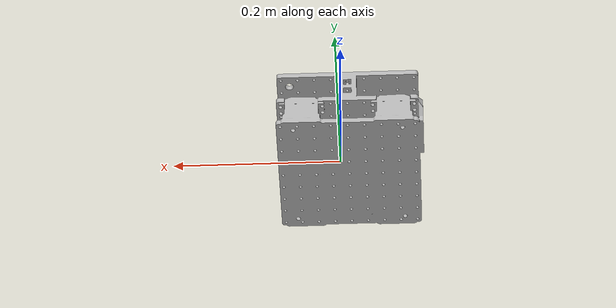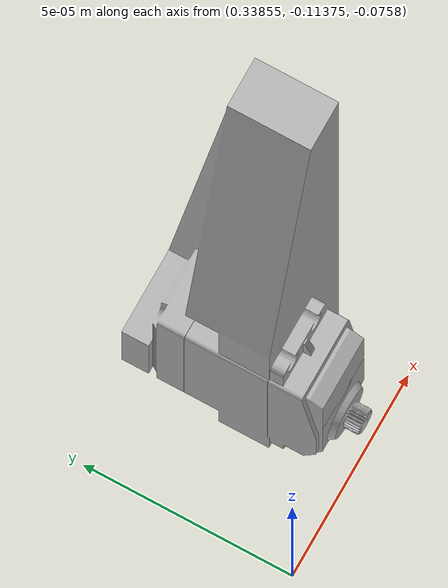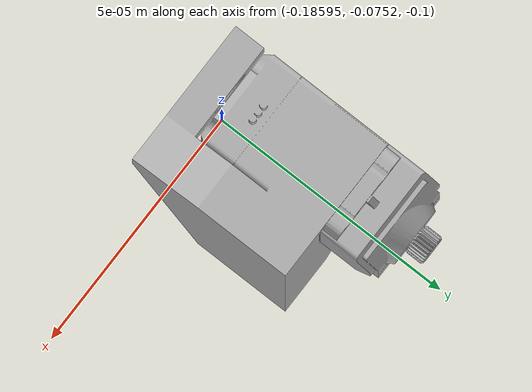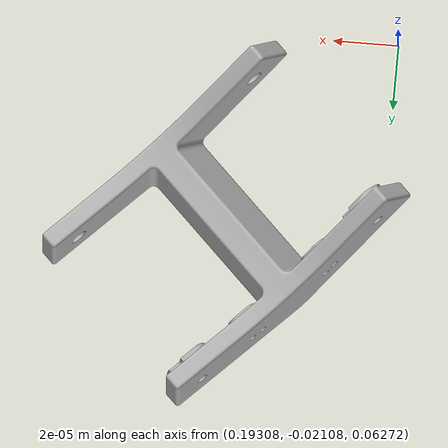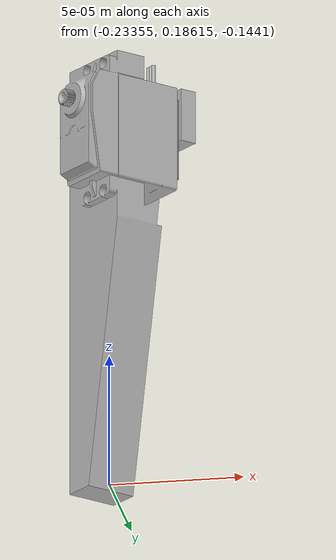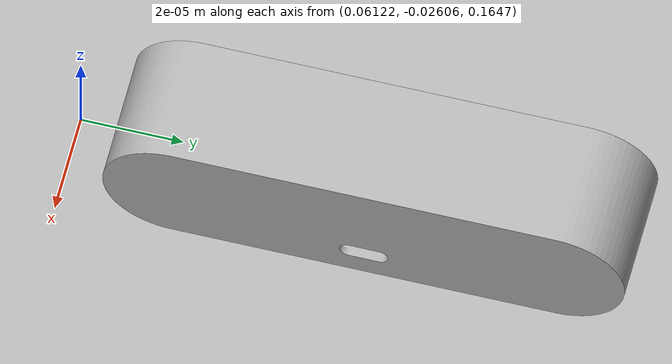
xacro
<?xml version="1.0" ?>
<robot name="spyderr" xmlns:xacro="http://www.ros.org/wiki/xacro">

<!-- ROS 2–safe package share root -->
<xacro:property name="pkg_share" value="$(find spyderr_description)"/>
<xacro:property name="mesh_dir"  value="${pkg_share}/meshes"/>

<xacro:include filename="${pkg_share}/urdf/materials.xacro" />
<xacro:include filename="${pkg_share}/urdf/spyderr.ros2control" />
<xacro:include filename="${pkg_share}/urdf/spyderr.gazebo" />

<link name="base_link">
  <inertial>
    <origin xyz="-0.011634383299055345 -0.020012327327441907 0.04021488449284461" rpy="0 0 0"/>
    <mass value="5.582430267110478"/>
    <inertia ixx="0.022303" iyy="0.019413" izz="0.030673" ixy="-6e-06" iyz="4e-06" ixz="0.000124"/>
  </inertial>
  <visual>
    <origin xyz="0 0 0" rpy="0 0 0"/>
    <geometry>
      <mesh filename="file://${mesh_dir}/base_link.stl" scale="0.001 0.001 0.001"/>
    </geometry>
    <material name="silver"/>
  </visual>
  <collision>
    <origin xyz="0 0 0" rpy="0 0 0"/>
    <geometry>
      <mesh filename="file://${mesh_dir}/base_link.stl" scale="0.001 0.001 0.001"/>
    </geometry>
  </collision>
</link>

<link name="coxa_FR_1">
  <inertial>
    <origin xyz="-0.028011122462089824 0.029189467664063093 -0.025661452378790764" rpy="0 0 0"/>
    <mass value="0.5326447248518721"/>
    <inertia ixx="0.00026" iyy="0.000276" izz="0.000188" ixy="2.9e-05" iyz="-1e-05" ixz="-2e-06"/>
  </inertial>
  <visual>
    <origin xyz="0 0 0" rpy="0 0 0"/>
    <geometry>
      <mesh filename="file://${mesh_dir}/link_local/coxa_FR_1__visual0.stl" scale="0.001 0.001 0.001"/>
    </geometry>
    <material name="silver"/>
  </visual>
  <collision>
    <origin xyz="0.0749 -0.0542 -0.0528" rpy="0 0 0"/>
    <geometry>
      <mesh filename="file://${mesh_dir}/coxa_FR_1.stl" scale="0.001 0.001 0.001"/>
    </geometry>
  </collision>
</link>

<link name="femur_FR_1">
  <inertial>
    <origin xyz="-0.022308199277599444 0.09228828281012573 -0.028037197394316607" rpy="0 0 0"/>
    <mass value="0.3037238401732045"/>
    <inertia ixx="0.000169" iyy="0.000169" izz="0.000293" ixy="-3.2e-05" iyz="1.9e-05" ixz="-1.9e-05"/>
  </inertial>
  <visual>
    <origin xyz="0 0 0" rpy="0 0 0"/>
    <geometry>
      <mesh filename="file://${mesh_dir}/link_local/femur_FR_1__visual0.stl" scale="0.001 0.001 0.001"/>
    </geometry>
    <material name="silver"/>
  </visual>
  <collision>
    <origin xyz="0.113987 -0.023232 -0.0627" rpy="0 0 0"/>
    <geometry>
      <mesh filename="file://${mesh_dir}/femur_FR_1.stl" scale="0.001 0.001 0.001"/>
    </geometry>
  </collision>
</link>

<link name="tibia_FR_1">
  <inertial>
    <origin xyz="0.06983981832712044 -0.04072388686916903 0.11930466179720378" rpy="0 0 0"/>
    <mass value="0.856718844269578"/>
    <inertia ixx="0.001697" iyy="0.001665" izz="0.000146" ixy="-1.3e-05" iyz="6.5e-05" ixz="-7.6e-05"/>
  </inertial>
  <visual>
    <origin xyz="0 0 0" rpy="0 0 0"/>
    <geometry>
      <mesh filename="file://${mesh_dir}/link_local/tibia_FR_1__visual0.stl" scale="0.001 0.001 0.001"/>
    </geometry>
    <material name="silver"/>
  </visual>
  <collision>
    <origin xyz="0.23362 -0.186207 0.144115" rpy="0 0 0"/>
    <geometry>
      <mesh filename="file://${mesh_dir}/tibia_FR_1.stl" scale="0.001 0.001 0.001"/>
    </geometry>
  </collision>
</link>

<link name="coxa_BR_1">
  <inertial>
    <origin xyz="0.02918900281187222 0.028011587314280717 -0.025661452378790736" rpy="0 0 0"/>
    <mass value="0.5326447248518721"/>
    <inertia ixx="0.000276" iyy="0.00026" izz="0.000188" ixy="-2.9e-05" iyz="2e-06" ixz="-1e-05"/>
  </inertial>
  <visual>
    <origin xyz="0 0 0" rpy="0 0 0"/>
    <geometry>
      <mesh filename="file://${mesh_dir}/link_local/coxa_BR_1__visual0.stl" scale="0.001 0.001 0.001"/>
    </geometry>
    <material name="silver"/>
  </visual>
  <collision>
    <origin xyz="-0.0549 -0.0542 -0.0528" rpy="0 0 0"/>
    <geometry>
      <mesh filename="file://${mesh_dir}/coxa_BR_1.stl" scale="0.001 0.001 0.001"/>
    </geometry>
  </collision>
</link>

<link name="femur_BR_1">
  <inertial>
    <origin xyz="-0.0771502480592433 0.13679673014696808 -0.028037197394316524" rpy="0 0 0"/>
    <mass value="0.3037238401732045"/>
    <inertia ixx="0.000169" iyy="0.000169" izz="0.000293" ixy="3.2e-05" iyz="1.9e-05" ixz="1.9e-05"/>
  </inertial>
  <visual>
    <origin xyz="0 0 0" rpy="0 0 0"/>
    <geometry>
      <mesh filename="file://${mesh_dir}/link_local/femur_BR_1__visual0.stl" scale="0.001 0.001 0.001"/>
    </geometry>
    <material name="silver"/>
  </visual>
  <collision>
    <origin xyz="-0.193264 0.021095 -0.0627" rpy="0 0 0"/>
    <geometry>
      <mesh filename="file://${mesh_dir}/femur_BR_1.stl" scale="0.001 0.001 0.001"/>
    </geometry>
  </collision>
</link>

<link name="tibia_BR_1">
  <inertial>
    <origin xyz="-0.07159486434794465 -0.10141884084834538 -0.18156633820279572" rpy="0 0 0"/>
    <mass value="0.856718844269578"/>
    <inertia ixx="0.001665" iyy="0.001697" izz="0.000146" ixy="1.3e-05" iyz="7.6e-05" ixz="6.5e-05"/>
  </inertial>
  <visual>
    <origin xyz="0 0 0" rpy="0 0 0"/>
    <geometry>
      <mesh filename="file://${mesh_dir}/link_local/tibia_BR_1__visual0.stl" scale="0.001 0.001 0.001"/>
    </geometry>
    <material name="silver"/>
  </visual>
  <collision>
    <origin xyz="-0.218025 -0.244252 -0.156756" rpy="0 0 0"/>
    <geometry>
      <mesh filename="file://${mesh_dir}/tibia_BR_1.stl" scale="0.001 0.001 0.001"/>
    </geometry>
  </collision>
</link>

<link name="coxa_FL_1">
  <inertial>
    <origin xyz="-0.02918900281187209 -0.028011587314280648 -0.02566145237879071" rpy="0 0 0"/>
    <mass value="0.5326447248518721"/>
    <inertia ixx="0.000276" iyy="0.00026" izz="0.000188" ixy="-2.9e-05" iyz="-2e-06" ixz="1e-05"/>
  </inertial>
  <visual>
    <origin xyz="0 0 0" rpy="0 0 0"/>
    <geometry>
      <mesh filename="file://${mesh_dir}/link_local/coxa_FL_1__visual0.stl" scale="0.001 0.001 0.001"/>
    </geometry>
    <material name="silver"/>
  </visual>
  <collision>
    <origin xyz="0.0749 0.0942 -0.0528" rpy="0 0 0"/>
    <geometry>
      <mesh filename="file://${mesh_dir}/coxa_FL_1.stl" scale="0.001 0.001 0.001"/>
    </geometry>
  </collision>
</link>

<link name="femur_FL_1">
  <inertial>
    <origin xyz="-0.22036675194075658 -0.20554973014696815 -0.02803719739431651" rpy="0 0 0"/>
    <mass value="0.3037238401732045"/>
    <inertia ixx="0.000169" iyy="0.000169" izz="0.000293" ixy="3.2e-05" iyz="-1.9e-05" ixz="-1.9e-05"/>
  </inertial>
  <visual>
    <origin xyz="0 0 0" rpy="0 0 0"/>
    <geometry>
      <mesh filename="file://${mesh_dir}/link_local/femur_FL_1__visual0.stl" scale="0.001 0.001 0.001"/>
    </geometry>
    <material name="silver"/>
  </visual>
  <collision>
    <origin xyz="-0.084253 -0.049848 -0.0627" rpy="0 0 0"/>
    <geometry>
      <mesh filename="file://${mesh_dir}/femur_FL_1.stl" scale="0.001 0.001 0.001"/>
    </geometry>
  </collision>
</link>

<link name="tibia_FL_1">
  <inertial>
    <origin xyz="-0.18368113565205535 -0.15385715915165465 0.07514566179720432" rpy="0 0 0"/>
    <mass value="0.856718844269578"/>
    <inertia ixx="0.001665" iyy="0.001697" izz="0.000146" ixy="1.3e-05" iyz="-7.6e-05" ixz="-6.5e-05"/>
  </inertial>
  <visual>
    <origin xyz="0 0 0" rpy="0 0 0"/>
    <geometry>
      <mesh filename="file://${mesh_dir}/link_local/tibia_FL_1__visual0.stl" scale="0.001 0.001 0.001"/>
    </geometry>
    <material name="silver"/>
  </visual>
  <collision>
    <origin xyz="-0.017251 0.028976 0.099956" rpy="0 0 0"/>
    <geometry>
      <mesh filename="file://${mesh_dir}/tibia_FL_1.stl" scale="0.001 0.001 0.001"/>
    </geometry>
  </collision>
</link>

<link name="coxa_BL_1">
  <inertial>
    <origin xyz="0.02801112246208972 -0.02918946766406294 -0.025661452378790733" rpy="0 0 0"/>
    <mass value="0.5326447248518721"/>
    <inertia ixx="0.00026" iyy="0.000276" izz="0.000188" ixy="2.9e-05" iyz="1e-05" ixz="2e-06"/>
  </inertial>
  <visual>
    <origin xyz="0 0 0" rpy="0 0 0"/>
    <geometry>
      <mesh filename="file://${mesh_dir}/link_local/coxa_BL_1__visual0.stl" scale="0.001 0.001 0.001"/>
    </geometry>
    <material name="silver"/>
  </visual>
  <collision>
    <origin xyz="-0.0549 0.0942 -0.0528" rpy="0 0 0"/>
    <geometry>
      <mesh filename="file://${mesh_dir}/coxa_BL_1.stl" scale="0.001 0.001 0.001"/>
    </geometry>
  </collision>
</link>

<link name="femur_BL_1">
  <inertial>
    <origin xyz="0.32028581868537026 -0.05003066340235417 -0.02803719739431655" rpy="0 0 0"/>
    <mass value="0.3037238401732045"/>
    <inertia ixx="0.000169" iyy="0.000169" izz="0.000293" ixy="-3.2e-05" iyz="-1.9e-05" ixz="1.9e-05"/>
  </inertial>
  <visual>
    <origin xyz="0 0 0" rpy="0 0 0"/>
    <geometry>
      <mesh filename="file://${mesh_dir}/link_local/femur_BL_1__visual0.stl" scale="0.001 0.001 0.001"/>
    </geometry>
    <material name="silver"/>
  </visual>
  <collision>
    <origin xyz="0.203531 0.10503 -0.0627" rpy="0 0 0"/>
    <geometry>
      <mesh filename="file://${mesh_dir}/femur_BL_1.stl" scale="0.001 0.001 0.001"/>
    </geometry>
  </collision>
</link>

<link name="tibia_BL_1">
  <inertial>
    <origin xyz="0.12266080108065015 -0.1517774937230599 -0.22618533820279574" rpy="0 0 0"/>
    <mass value="0.856718844269578"/>
    <inertia ixx="0.001697" iyy="0.001665" izz="0.000146" ixy="-1.3e-05" iyz="-6.5e-05" ixz="7.6e-05"/>
  </inertial>
  <visual>
    <origin xyz="0 0 0" rpy="0 0 0"/>
    <geometry>
      <mesh filename="file://${mesh_dir}/link_local/tibia_BL_1__visual0.stl" scale="0.001 0.001 0.001"/>
    </geometry>
    <material name="silver"/>
  </visual>
  <collision>
    <origin xyz="-0.021579 0.033246 -0.201375" rpy="0 0 0"/>
    <geometry>
      <mesh filename="file://${mesh_dir}/tibia_BL_1.stl" scale="0.001 0.001 0.001"/>
    </geometry>
  </collision>
</link>

<link name="camera_stand_1">
  <inertial>
    <origin xyz="0.002322519957098118 -0.006000468557076734 0.0390749353327329" rpy="0 0 0"/>
    <mass value="0.28621405783156734"/>
    <inertia ixx="0.000356" iyy="0.000274" izz="0.000106" ixy="-0.0" iyz="-0.0" ixz="-0.0"/>
  </inertial>
  <visual>
    <origin xyz="0 0 0" rpy="0 0 0"/>
    <geometry>
      <mesh filename="file://${mesh_dir}/link_local/camera_stand_1__visual0.stl" scale="0.001 0.001 0.001"/>
    </geometry>
    <material name="silver"/>
  </visual>
  <collision>
    <origin xyz="-0.064 0.02 -0.0877" rpy="0 0 0"/>
    <geometry>
      <mesh filename="file://${mesh_dir}/camera_stand_1.stl" scale="0.001 0.001 0.001"/>
    </geometry>
  </collision>
</link>

<link name="camera_1">
  <inertial>
    <origin xyz="0.0008434977883624364 5.831530578721475e-05 0.013401911513465398" rpy="0 0 0"/>
    <mass value="0.04133715258262728"/>
    <inertia ixx="4.5e-05" iyy="8e-06" izz="4.5e-05" ixy="0.0" iyz="0.0" ixz="-0.0"/>
  </inertial>
  <visual>
    <origin xyz="0 0 0" rpy="0 0 0"/>
    <geometry>
      <mesh filename="file://${mesh_dir}/link_local/camera_1__visual0.stl" scale="0.001 0.001 0.001"/>
    </geometry>
    <material name="silver"/>
  </visual>
  <collision>
    <origin xyz="-0.061225 0.026 -0.1647" rpy="0 0 0"/>
    <geometry>
      <mesh filename="file://${mesh_dir}/camera_1.stl" scale="0.001 0.001 0.001"/>
    </geometry>
  </collision>
</link>

<link name="lidar_1">
  <inertial>
    <origin xyz="1.1999484417213324e-07 7.55530585108688e-08 0.009521070328133568" rpy="0 0 0"/>
    <mass value="0.6521818172175858"/>
    <inertia ixx="0.000253" iyy="0.000253" izz="0.000465" ixy="-0.0" iyz="-0.0" ixz="-0.0"/>
  </inertial>
  <visual>
    <origin xyz="0 0 0" rpy="0 0 0"/>
    <geometry>
      <mesh filename="file://${mesh_dir}/link_local/lidar_1__visual0.stl" scale="0.001 0.001 0.001"/>
    </geometry>
    <material name="silver"/>
  </visual>
  <collision>
    <origin xyz="0.069407 0.019459 -0.0877" rpy="0 0 0"/>
    <geometry>
      <mesh filename="file://${mesh_dir}/lidar_1.stl" scale="0.001 0.001 0.001"/>
    </geometry>
  </collision>
</link>

<link name="imu_1">
  <inertial>
    <origin xyz="6.730727086790012e-16 -4.6485218993877475e-07 0.00250000000000003" rpy="0 0 0"/>
    <mass value="0.047099999999999996"/>
    <inertia ixx="6e-06" iyy="4e-06" izz="1e-05" ixy="0.0" iyz="0.0" ixz="0.0"/>
  </inertial>
  <visual>
    <origin xyz="0 0 0" rpy="0 0 0"/>
    <geometry>
      <mesh filename="file://${mesh_dir}/link_local/imu_1__visual0.stl" scale="0.001 0.001 0.001"/>
    </geometry>
    <material name="silver"/>
  </visual>
  <collision>
    <origin xyz="-0.01 0.02 -0.0877" rpy="0 0 0"/>
    <geometry>
      <mesh filename="file://${mesh_dir}/imu_1.stl" scale="0.001 0.001 0.001"/>
    </geometry>
  </collision>
</link>

<joint name="joint1" type="revolute">
  <origin xyz="-0.0749 0.0542 0.0528" rpy="0 0 0"/>
  <parent link="base_link"/>
  <child link="coxa_FR_1"/>
  <axis xyz="0.0 0.0 1.0"/>
  <limit upper="2.356194" lower="-0.785398" effort="100" velocity="100"/>
</joint>

<joint name="joint2" type="revolute">
  <origin xyz="-0.039087 -0.030968 0.0099" rpy="0 0 0"/>
  <parent link="coxa_FR_1"/>
  <child link="femur_FR_1"/>
  <axis xyz="-0.707107 -0.707107 -0.0"/>
  <limit upper="1.570796" lower="-1.570796" effort="100" velocity="100"/>
</joint>

<joint name="joint3" type="revolute">
  <origin xyz="-0.119633 0.162975 -0.206815" rpy="0 0 0"/>
  <parent link="femur_FR_1"/>
  <child link="tibia_FR_1"/>
  <axis xyz="-0.707107 -0.707107 -0.0"/>
  <limit upper="1.570796" lower="-1.570796" effort="100" velocity="100"/>
</joint>

<joint name="joint4" type="revolute">
  <origin xyz="0.0549 0.0542 0.0528" rpy="0 0 0"/>
  <parent link="base_link"/>
  <child link="coxa_BR_1"/>
  <axis xyz="0.0 0.0 1.0"/>
  <limit upper="0.785398" lower="-2.356194" effort="100" velocity="100"/>
</joint>

<joint name="joint5" type="revolute">
  <origin xyz="0.138364 -0.075295 0.0099" rpy="0 0 0"/>
  <parent link="coxa_BR_1"/>
  <child link="femur_BR_1"/>
  <axis xyz="-0.707107 0.707107 -0.0"/>
  <limit upper="4.712389" lower="1.570796" effort="100" velocity="100"/>
</joint>

<joint name="joint6" type="revolute">
  <origin xyz="0.024761 0.265347 0.094056" rpy="0 0 0"/>
  <parent link="femur_BR_1"/>
  <child link="tibia_BR_1"/>
  <axis xyz="-0.707107 0.707107 -0.0"/>
  <limit upper="1.570796" lower="-1.570796" effort="100" velocity="100"/>
</joint>

<joint name="joint7" type="revolute">
  <origin xyz="-0.0749 -0.0942 0.0528" rpy="0 0 0"/>
  <parent link="base_link"/>
  <child link="coxa_FL_1"/>
  <axis xyz="0.0 0.0 1.0"/>
  <limit upper="3.926991" lower="0.785398" effort="100" velocity="100"/>
</joint>

<joint name="joint9" type="revolute">
  <origin xyz="0.159153 0.144048 0.0099" rpy="0 0 0"/>
  <parent link="coxa_FL_1"/>
  <child link="femur_FL_1"/>
  <axis xyz="0.707107 -0.707107 -0.0"/>
  <limit upper="1.570796" lower="-1.570796" effort="100" velocity="100"/>
</joint>

<joint name="joint10" type="revolute">
  <origin xyz="-0.067002 -0.078824 -0.162656" rpy="0 0 0"/>
  <parent link="femur_FL_1"/>
  <child link="tibia_FL_1"/>
  <axis xyz="0.707107 -0.707107 -0.0"/>
  <limit upper="1.570796" lower="-1.570796" effort="100" velocity="100"/>
</joint>

<joint name="joint11" type="revolute">
  <origin xyz="0.0549 -0.0942 0.0528" rpy="0 0 0"/>
  <parent link="base_link"/>
  <child link="coxa_BL_1"/>
  <axis xyz="0.0 0.0 1.0"/>
  <limit upper="-0.785398" lower="-3.926991" effort="100" velocity="100"/>
</joint>

<joint name="joint12" type="revolute">
  <origin xyz="-0.258431 -0.01083 0.0099" rpy="0 0 0"/>
  <parent link="coxa_BL_1"/>
  <child link="femur_BL_1"/>
  <axis xyz="0.707107 0.707107 -0.0"/>
  <limit upper="4.712389" lower="1.570796" effort="100" velocity="100"/>
</joint>

<joint name="joint13" type="revolute">
  <origin xyz="0.22511 0.071784 0.138675" rpy="0 0 0"/>
  <parent link="femur_BL_1"/>
  <child link="tibia_BL_1"/>
  <axis xyz="0.707107 0.707107 -0.0"/>
  <limit upper="1.570796" lower="-1.570796" effort="100" velocity="100"/>
</joint>

<joint name="joint14" type="fixed">
  <origin xyz="0.064 -0.02 0.0877" rpy="0 0 0"/>
  <parent link="base_link"/>
  <child link="camera_stand_1"/>
</joint>

<joint name="joint15" type="fixed">
  <origin xyz="-0.002775 -0.006 0.077" rpy="0 0 0"/>
  <parent link="camera_stand_1"/>
  <child link="camera_1"/>
</joint>

<joint name="joint16" type="continuous">
  <origin xyz="-0.069407 -0.019459 0.0877" rpy="0 0 0"/>
  <parent link="base_link"/>
  <child link="lidar_1"/>
  <axis xyz="0.0 0.0 -1.0"/>
</joint>

<joint name="joint17" type="fixed">
  <origin xyz="0.01 -0.02 0.0877" rpy="0 0 0"/>
  <parent link="base_link"/>
  <child link="imu_1"/>
</joint>

</robot>

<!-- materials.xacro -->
<robot name="spyderr" xmlns:xacro="http://www.ros.org/wiki/xacro" >

<material name="silver">
  <color rgba="0.700 0.700 0.700 1.000"/>
</material>

</robot>

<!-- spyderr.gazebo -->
<robot name="spyderr" xmlns:xacro="http://www.ros.org/wiki/xacro" >

<xacro:property name="body_color" value="Gazebo/Silver" />

<gazebo reference="base_link">
  <material>${body_color}</material>
  <mu1>0.2</mu1>
  <mu2>0.2</mu2>
  <self_collide>true</self_collide>
  <gravity>true</gravity>
</gazebo>

<gazebo reference="coxa_FR_1">
  <material>${body_color}</material>
  <mu1>0.2</mu1>
  <mu2>0.2</mu2>
  <self_collide>true</self_collide>
</gazebo>

<gazebo reference="femur_FR_1">
  <material>${body_color}</material>
  <mu1>0.2</mu1>
  <mu2>0.2</mu2>
  <self_collide>true</self_collide>
</gazebo>

<gazebo reference="tibia_FR_1">
  <material>${body_color}</material>
  <mu1>0.2</mu1>
  <mu2>0.2</mu2>
  <self_collide>true</self_collide>
</gazebo>

<gazebo reference="coxa_BR_1">
  <material>${body_color}</material>
  <mu1>0.2</mu1>
  <mu2>0.2</mu2>
  <self_collide>true</self_collide>
</gazebo>

<gazebo reference="femur_BR_1">
  <material>${body_color}</material>
  <mu1>0.2</mu1>
  <mu2>0.2</mu2>
  <self_collide>true</self_collide>
</gazebo>

<gazebo reference="tibia_BR_1">
  <material>${body_color}</material>
  <mu1>0.2</mu1>
  <mu2>0.2</mu2>
  <self_collide>true</self_collide>
</gazebo>

<gazebo reference="coxa_FL_1">
  <material>${body_color}</material>
  <mu1>0.2</mu1>
  <mu2>0.2</mu2>
  <self_collide>true</self_collide>
</gazebo>

<gazebo reference="femur_FL_1">
  <material>${body_color}</material>
  <mu1>0.2</mu1>
  <mu2>0.2</mu2>
  <self_collide>true</self_collide>
</gazebo>

<gazebo reference="tibia_FL_1">
  <material>${body_color}</material>
  <mu1>0.2</mu1>
  <mu2>0.2</mu2>
  <self_collide>true</self_collide>
</gazebo>

<gazebo reference="coxa_BL_1">
  <material>${body_color}</material>
  <mu1>0.2</mu1>
  <mu2>0.2</mu2>
  <self_collide>true</self_collide>
</gazebo>

<gazebo reference="femur_BL_1">
  <material>${body_color}</material>
  <mu1>0.2</mu1>
  <mu2>0.2</mu2>
  <self_collide>true</self_collide>
</gazebo>

<gazebo reference="tibia_BL_1">
  <material>${body_color}</material>
  <mu1>0.2</mu1>
  <mu2>0.2</mu2>
  <self_collide>true</self_collide>
</gazebo>

<gazebo reference="camera_stand_1">
  <material>${body_color}</material>
  <mu1>0.2</mu1>
  <mu2>0.2</mu2>
  <self_collide>true</self_collide>
</gazebo>

<gazebo reference="camera_1">
  <material>${body_color}</material>
  <mu1>0.2</mu1>
  <mu2>0.2</mu2>
  <self_collide>true</self_collide>
</gazebo>

<gazebo reference="lidar_1">
  <material>${body_color}</material>
  <mu1>0.2</mu1>
  <mu2>0.2</mu2>
  <self_collide>true</self_collide>
</gazebo>

<gazebo reference="imu_1">
  <material>${body_color}</material>
  <mu1>0.2</mu1>
  <mu2>0.2</mu2>
  <self_collide>true</self_collide>
</gazebo>

</robot>
